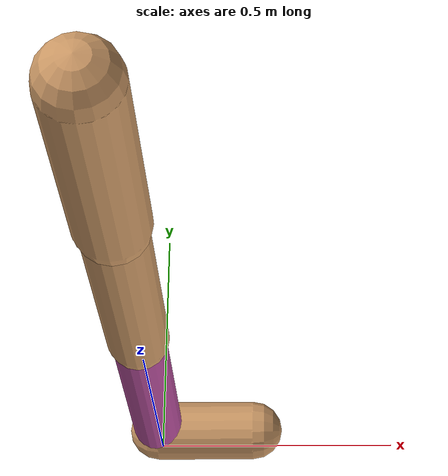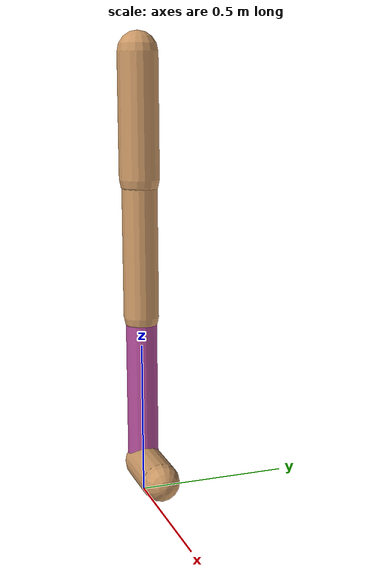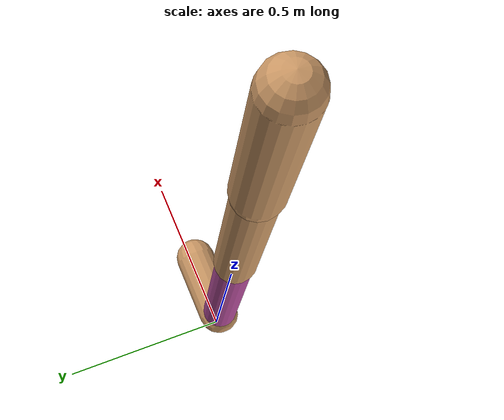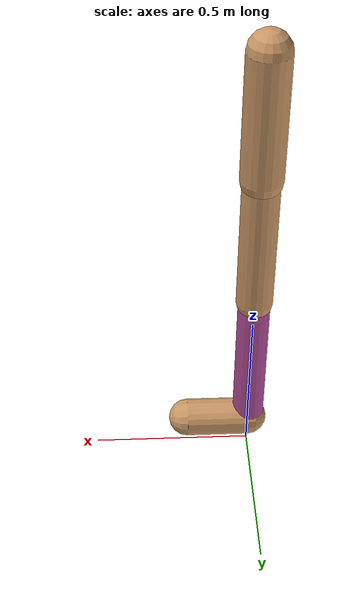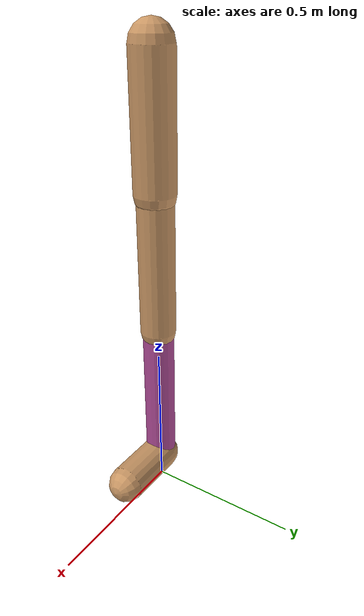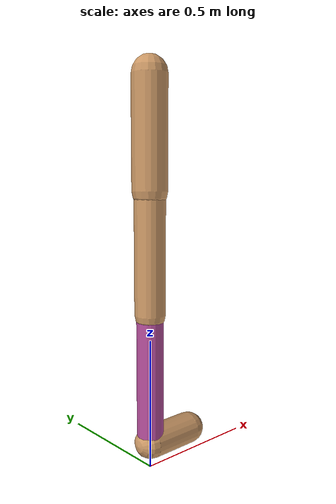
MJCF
<?xml version="1.0" encoding="utf-8"?>
<mujoco model="walker2d">
	<compiler angle="degree" coordinate="global" inertiafromgeom="true"></compiler>
	<default>
		<joint armature="0.01" damping="0.07011995369581439" limited="true"></joint>
		<geom conaffinity="0" condim="3" contype="1" density="1000" friction="0.8957657044672905 0.08778843715465716 0.12008366073151122" rgba="0.8 0.6 .4 1"></geom>
	</default>
	<option integrator="RK4" timestep="0.002"></option>
	<worldbody>
		<body name="torso">
			<joint armature="0" axis="1 0 0" damping="0.0" limited="false" name="ignorex" pos="0 0 0" stiffness="0.0" type="slide"></joint>
			<joint armature="0" axis="0 0 1" damping="0.0" limited="false" name="ignorez" pos="0 0 0" ref="1.25" stiffness="0.0" type="slide"></joint>
			<joint armature="0" axis="0 1 0" damping="0.0" limited="false" name="ignorey" pos="0 0 0" stiffness="0.0" type="hinge"></joint>
			<geom fromto="0 0 1.45 0 0 1.05" name="torso_geom" size="0.06497779544013724" type="capsule"></geom>
			<body name="thigh">
				<joint axis="0 -1 0" name="thigh_joint" pos="0 0 1.05" range="-150 0" type="hinge"></joint>
				<geom fromto="0 0 1.05 0 0 0.6" name="thigh_geom" size="0.057417196487335814" type="capsule"></geom>
				<body name="leg">
					<joint axis="0 -1 0" name="leg_joint" pos="0 0 0.6" range="-150 0" type="hinge"></joint>
					<geom fromto="0 0 0.6 0 0 0.1" name="leg_geom" size="0.03878005683375843" type="capsule"></geom>
					<body name="foot">
						<joint axis="0 -1 0" name="foot_joint" pos="0 0 0.1" range="-45 45" type="hinge"></joint>
						<geom fromto="-0.0 0 0.1 0.2 0 0.1" name="foot_geom" size="0.0607868693356811" type="capsule"></geom>
					</body>
				</body>
			</body>
			<body name="thigh_left">
				<joint axis="0 -1 0" name="thigh_left_joint" pos="0 0 1.05" range="-150 0" type="hinge"></joint>
				<geom fromto="0 0 1.05 0 0 0.6" name="thigh_left_geom" rgba=".7 .3 .6 1" size="0.05394805695214999" type="capsule"></geom>
				<body name="leg_left">
					<joint axis="0 -1 0" name="leg_left_joint" pos="0 0 0.6" range="-150 0" type="hinge"></joint>
					<geom fromto="0 0 0.6 0 0 0.1" name="leg_left_geom" rgba=".7 .3 .6 1" size="0.0506538377100876" type="capsule"></geom>
					<body name="foot_left">
						<joint axis="0 -1 0" name="foot_left_joint" pos="0 0 0.1" range="-45 45" type="hinge"></joint>
						<geom fromto="-0.0 0 0.1 0.2 0 0.1" name="foot_left_geom" rgba=".7 .3 .6 1" size="0.05937648007735175" type="capsule"></geom>
					</body>
				</body>
			</body>
		</body>
	</worldbody>
	<actuator>
		<motor ctrllimited="true" ctrlrange="-1.0 1.0" gear="100" joint="thigh_joint"></motor>
		<motor ctrllimited="true" ctrlrange="-1.0 1.0" gear="100" joint="leg_joint"></motor>
		<motor ctrllimited="true" ctrlrange="-1.0 1.0" gear="100" joint="foot_joint"></motor>
		<motor ctrllimited="true" ctrlrange="-1.0 1.0" gear="100" joint="thigh_left_joint"></motor>
		<motor ctrllimited="true" ctrlrange="-1.0 1.0" gear="100" joint="leg_left_joint"></motor>
		<motor ctrllimited="true" ctrlrange="-1.0 1.0" gear="100" joint="foot_left_joint"></motor>
	</actuator>
</mujoco>
